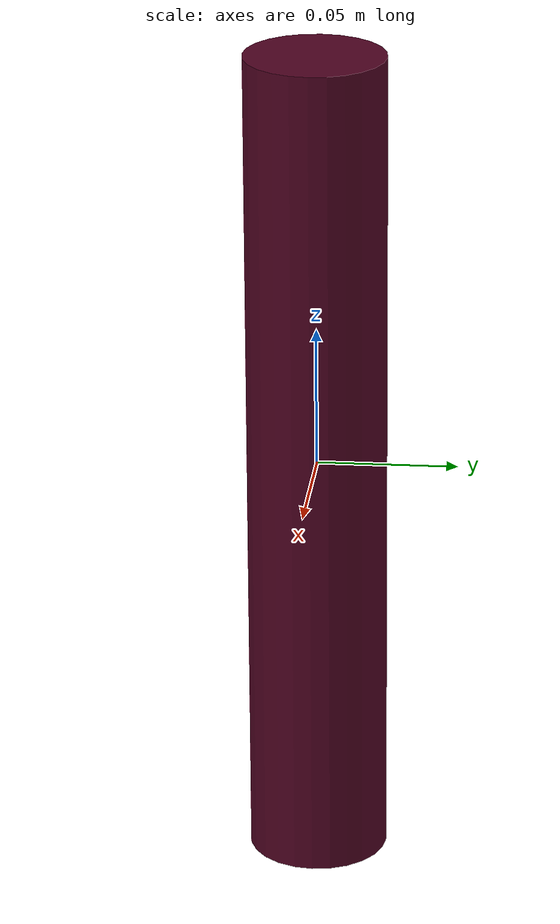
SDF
<?xml version="1.0"?>
<sdf version="1.7">
  <model name="cylinder">
    <!--
    Axes:
      +X - pointing toward the handle.
      +Z - pointing toward the top.
    Origin:
      (0, 0, 0) at the center (while ignoring the handle).
    -->
    <link name="base_link">
      <inertial>
        <pose>0.0042 0.00000 -0.0059 0 0 0</pose>
        <mass>0.321</mass>
        <inertia>
          <ixx> 0.000446</ixx>
          <ixy> 0.000000</ixy>
          <ixz>-0.000016</ixz>
          <iyy> 0.000515</iyy>
          <iyz> 0.000000</iyz>
          <izz> 0.000415</izz>
        </inertia>
      </inertial>
      <visual name="visual_cylinder">
        <geometry>
          <cylinder>
            <radius>0.025</radius>
            <length>0.3</length>
          </cylinder>
        </geometry>
        <material>
          <diffuse>0.31 0.01 0.13 1.0</diffuse>
        </material>
      </visual>
      <collision name="collision_cylinder">
        <geometry>
          <cylinder>
            <radius>0.025</radius>
            <length>0.3</length>
          </cylinder>
        </geometry>
      </collision>
      <!-- Add spheres to bottom and top rims to avoid surface/surface
      collision (which causes jumping). -->
      <collision name="bottom_sphere_collision_0">
        <pose>0.043 0 -0.0495 0 0 0</pose>
        <geometry>
          <sphere>
            <radius>2e-3</radius>
          </sphere>
        </geometry>
      </collision>
      <collision name="bottom_sphere_collision_1">
        <pose>0 0.043 -0.0495 0 0 0</pose>
        <geometry>
          <sphere>
            <radius>2e-3</radius>
          </sphere>
        </geometry>
      </collision>
      <collision name="bottom_sphere_collision_2">
        <pose>-0.043 0 -0.0495 0 0 0</pose>
        <geometry>
          <sphere>
            <radius>2e-3</radius>
          </sphere>
        </geometry>
      </collision>
      <collision name="bottom_sphere_collision_3">
        <pose>0 -0.043 -0.0495 0 0 0</pose>
        <geometry>
          <sphere>
            <radius>2e-3</radius>
          </sphere>
        </geometry>
      </collision>
      <collision name="bottom_sphere_collision_4">
        <pose>.02 0.038 -0.0495 0 0 0</pose>
        <geometry>
          <sphere>
            <radius>2e-3</radius>
          </sphere>
        </geometry>
      </collision>
      <collision name="top_sphere_collision_0">
        <pose>0.043 0 0.0495 0 0 0</pose>
        <geometry>
          <sphere>
            <radius>2e-3</radius>
          </sphere>
        </geometry>
      </collision>
      <collision name="top_sphere_collision_1">
        <pose>0 0.043 0.0495 0 0 0</pose>
        <geometry>
          <sphere>
            <radius>2e-3</radius>
          </sphere>
        </geometry>
      </collision>
      <collision name="top_sphere_collision_2">
        <pose>-0.043 0 0.0495 0 0 0</pose>
        <geometry>
          <sphere>
            <radius>2e-3</radius>
          </sphere>
        </geometry>
      </collision>
      <collision name="top_sphere_collision_3">
        <pose>0 -0.043 0.0495 0 0 0</pose>
        <geometry>
          <sphere>
            <radius>2e-3</radius>
          </sphere>
        </geometry>
      </collision>
      <collision name="top_sphere_collision_4">
        <pose>.02 0.038 0.0495 0 0 0</pose>
        <geometry>
          <sphere>
            <radius>2e-3</radius>
          </sphere>
        </geometry>
      </collision>
      <collision name="top_handle_sphere_collision_0">
        <pose>0.071 0.006 0.042 0 0 0</pose>
        <geometry>
          <sphere>
            <radius>2e-3</radius>
          </sphere>
        </geometry>
      </collision>
      <collision name="top_handle_sphere_collision_1">
        <pose>0.071 -0.006 0.042 0 0 0</pose>
        <geometry>
          <sphere>
            <radius>2e-3</radius>
          </sphere>
        </geometry>
      </collision>
      <collision name="bottom_handle_sphere_collision_0">
        <pose>0.071 0.006 -0.03 0 0 0</pose>
        <geometry>
          <sphere>
            <radius>2e-3</radius>
          </sphere>
        </geometry>
      </collision>
      <collision name="bottom_handle_sphere_collision_1">
        <pose>0.071 -0.006 -0.03 0 0 0</pose>
        <geometry>
          <sphere>
            <radius>2e-3</radius>
          </sphere>
        </geometry>
      </collision>
    </link>
  </model>
</sdf>
